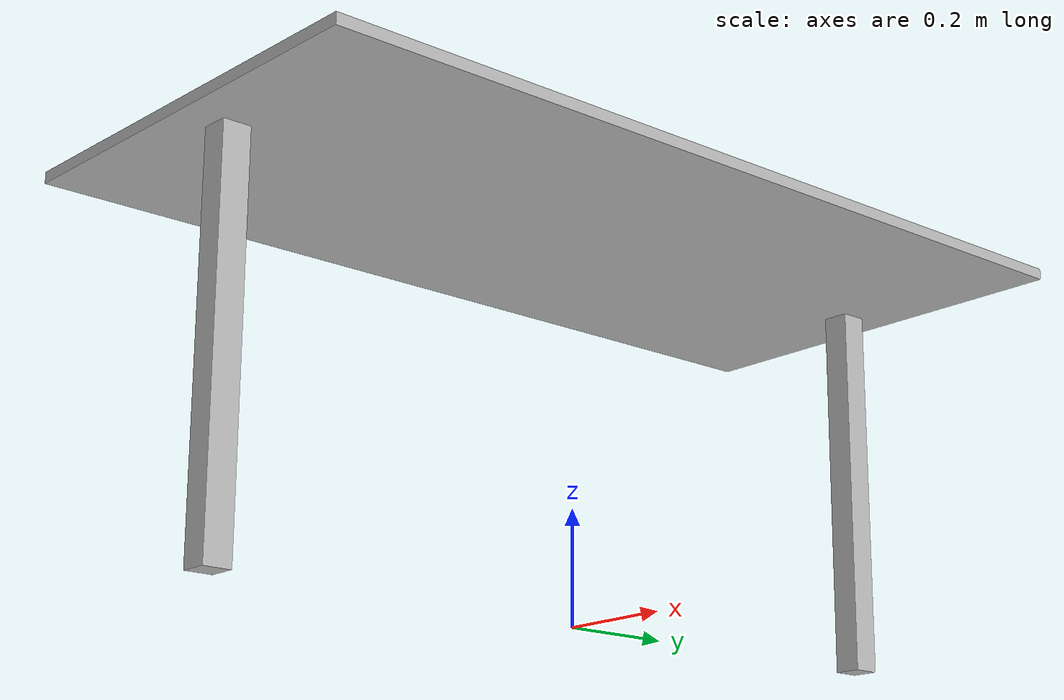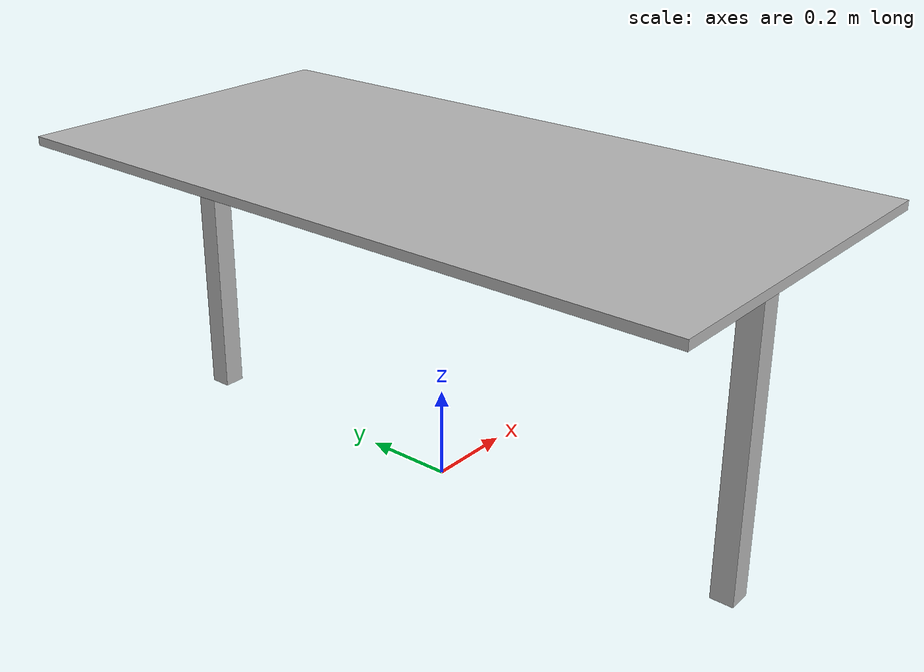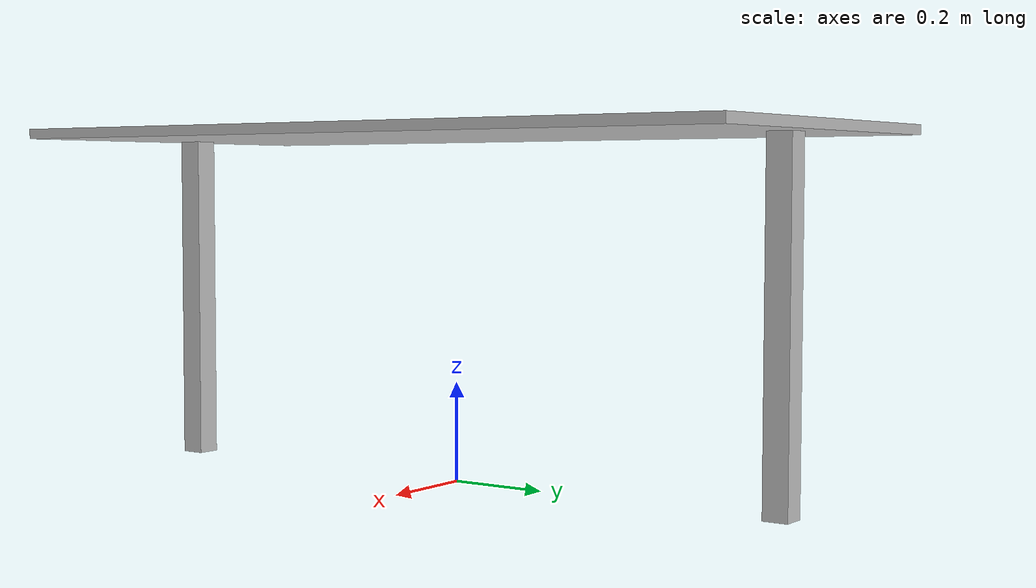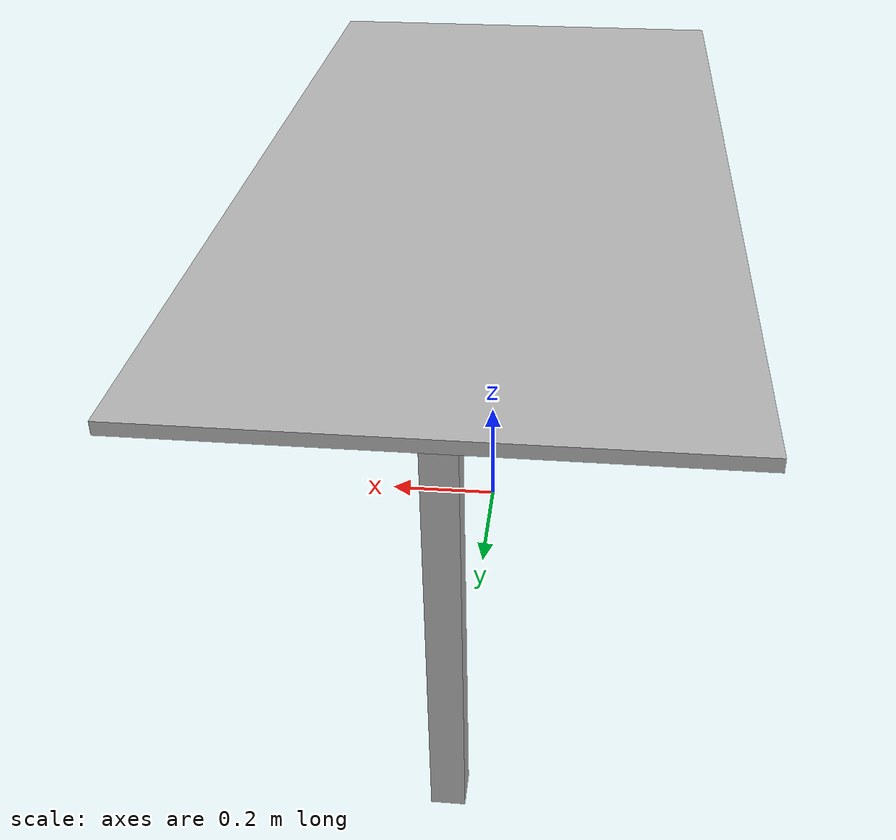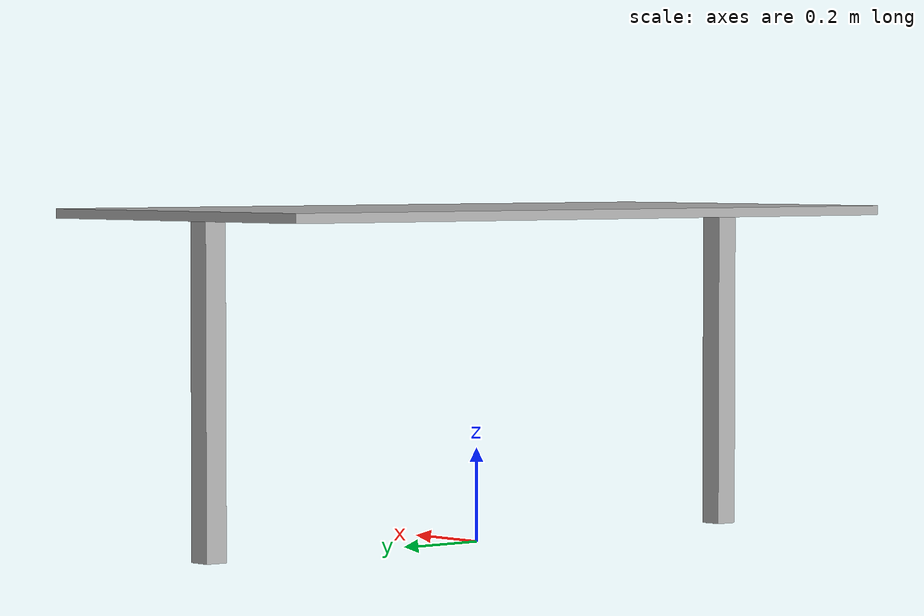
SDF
<?xml version='1.0'?>
<sdf version="1.4">
<model name="my_model">
  <pose>0 0 0.0 0 0 0</pose>
  <static>true</static>
    <link name="surface">
    <pose>0 0 0.7 0 0 0 </pose>
      <inertial>
        <mass>1.0</mass>
        <inertia> <!-- inertias are tricky to compute -->
          <!-- http://gazebosim.org/tutorials?tut=inertia&cat=build_robot -->
          <ixx>0.083</ixx>       <!-- for a box: ixx = 0.083 * mass * (y*y + z*z) -->
          <ixy>0.0</ixy>         <!-- for a box: ixy = 0 -->
          <ixz>0.0</ixz>         <!-- for a box: ixz = 0 -->
          <iyy>0.083</iyy>       <!-- for a box: iyy = 0.083 * mass * (x*x + z*z) -->
          <iyz>0.0</iyz>         <!-- for a box: iyz = 0 -->
          <izz>0.083</izz>       <!-- for a box: izz = 0.083 * mass * (x*x + y*y) -->
        </inertia>
      </inertial>
      <collision name="collision">
        <geometry>
          <box>
            <size>0.8 1.6 0.02</size>
          </box>
        </geometry>
      </collision>
      <visual name="visual">
        <geometry>
          <box>
            <size>0.8 1.6 0.02</size>
          </box>
        </geometry>
      </visual>
    </link>

    <link name="leg1">
      <pose>0 0.71 0.35 0 0 0</pose>
      <inertial>
        <mass>1.0</mass>
        <inertia> <!-- inertias are tricky to compute -->
          <!-- http://gazebosim.org/tutorials?tut=inertia&cat=build_robot -->
          <ixx>0.083</ixx>       <!-- for a box: ixx = 0.083 * mass * (y*y + z*z) -->
          <ixy>0.0</ixy>         <!-- for a box: ixy = 0 -->
          <ixz>0.0</ixz>         <!-- for a box: ixz = 0 -->
          <iyy>0.083</iyy>       <!-- for a box: iyy = 0.083 * mass * (x*x + z*z) -->
          <iyz>0.0</iyz>         <!-- for a box: iyz = 0 -->
          <izz>0.083</izz>       <!-- for a box: izz = 0.083 * mass * (x*x + y*y) -->
        </inertia>
      </inertial>
      <collision name="collision">
        <geometry>
          <box>
            <size>0.05 0.05 0.7</size>
          </box>
        </geometry>
      </collision>
      <visual name="visual">
        <geometry>
          <box>
            <size>0.05 0.05 0.7</size>
          </box>
        </geometry>
      </visual>
    </link>

    <link name="leg2">
      <pose>0 -0.71 0.35 0 0 0</pose>
      <inertial>
        <mass>1.0</mass>
        <inertia> <!-- inertias are tricky to compute -->
          <!-- http://gazebosim.org/tutorials?tut=inertia&cat=build_robot -->
          <ixx>0.083</ixx>       <!-- for a box: ixx = 0.083 * mass * (y*y + z*z) -->
          <ixy>0.0</ixy>         <!-- for a box: ixy = 0 -->
          <ixz>0.0</ixz>         <!-- for a box: ixz = 0 -->
          <iyy>0.083</iyy>       <!-- for a box: iyy = 0.083 * mass * (x*x + z*z) -->
          <iyz>0.0</iyz>         <!-- for a box: iyz = 0 -->
          <izz>0.083</izz>       <!-- for a box: izz = 0.083 * mass * (x*x + y*y) -->
        </inertia>
      </inertial>
      <collision name="collision">
        <geometry>
          <box>
            <size>0.05 0.05 0.7</size>
          </box>
        </geometry>
      </collision>
      <visual name="visual">
        <geometry>
          <box>
            <size>0.05 0.05 0.7</size>
          </box>
        </geometry>
      </visual>
    </link>

  </model>
</sdf>
